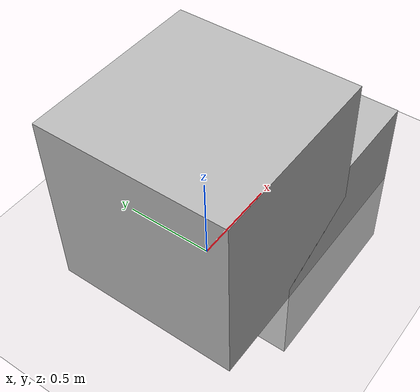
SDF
<?xml version="1.0"?>
<sdf version="1.4">
  <world name="default">

    <!-- Ground Plane -->
    <include>
      <uri>model://ground_plane</uri>
    </include>

    <include>
      <uri>model://sun</uri>
    </include>

    <model name="uwb_anchor0">
      <pose>0 0 0.5 0 0 0</pose>
      <link name="link">
        <collision name="collision">
          <geometry>
            <box>
              <size>1 1 1</size>
            </box>
          </geometry>
        </collision>

        <visual name="visual">
          <geometry>
            <box>
              <size>1 1 1</size>
            </box>
          </geometry>
        </visual>
      </link>

 <plugin name='libgtec_uwb_plugin' filename='libgtec_uwb_plugin.so'>
          <update_rate>25</update_rate>
          <nlosSoftWallWidth>0.25</nlosSoftWallWidth>
          <tag_z_offset>1.5</tag_z_offset>
          <tag_link>tag_0</tag_link>
          <anchor_prefix>uwb_anchor</anchor_prefix>
          <all_los>false</all_los>
          <tag_id>0</tag_id>
       </plugin>

    </model>
    <model name="uwb_anchor2">
      <pose>0.5 0 0 0 0 0</pose>
      <link name="link">
        <collision name="collision">
          <geometry>
            <box>
              <size>1 1 1</size>
            </box>
          </geometry>
        </collision>

        <visual name="visual">
          <geometry>
            <box>
              <size>1 1 1</size>
            </box>
          </geometry>
        </visual>
      </link>

       <plugin name='libgtec_uwb_plugin' filename='libgtec_uwb_plugin.so'>
          <update_rate>25</update_rate>
          <nlosSoftWallWidth>0.25</nlosSoftWallWidth>
          <tag_z_offset>1.5</tag_z_offset>
          <tag_link>tag_0</tag_link>
          <anchor_prefix>uwb_anchor</anchor_prefix>
          <all_los>false</all_los>
          <tag_id>0</tag_id>
       </plugin>
    </model>
        <model name="uwb_anchor3">
      <pose>0 0 0.5 0 0 0</pose>
      <link name="link">
        <collision name="collision">
          <geometry>
            <box>
              <size>1 1 1</size>
            </box>
          </geometry>
        </collision>

        <visual name="visual">
          <geometry>
            <box>
              <size>1 1 1</size>
            </box>
          </geometry>
        </visual>
      </link>

       <plugin name='libgtec_uwb_plugin' filename='libgtec_uwb_plugin.so'>
          <update_rate>25</update_rate>
          <nlosSoftWallWidth>0.25</nlosSoftWallWidth>
          <tag_z_offset>1.5</tag_z_offset>
          <tag_link>tag_0</tag_link>
          <anchor_prefix>uwb_anchor</anchor_prefix>
          <all_los>false</all_los>

       </plugin>
    </model>
    <model name="tag">
      <pose>0.5 0 0 0 0 0</pose>
      <link name="tag_0">
        <collision name="collision">
          <geometry>
            <box>
              <size>1 1 1</size>
            </box>
          </geometry>
        </collision>

        <visual name="visual">
          <geometry>
            <box>
              <size>1 1 1</size>
            </box>
          </geometry>
        </visual>
      </link>

      <plugin name='random' filename='libRandomVelocityPlugin.so'>
          <link>tag_0</link>
          <initial_velocity>0 0.5 0</initial_velocity>
          <velocity_factor>0.5</velocity_factor>
          <update_period>10</update_period>
          <min_z>0</min_z>
          <max_z>0</max_z>

       </plugin>
       <plugin name='libgtec_uwb_plugin' filename='libgtec_uwb_plugin.so'>
          <update_rate>25</update_rate>
          <nlosSoftWallWidth>0.25</nlosSoftWallWidth>
          <tag_z_offset>1.5</tag_z_offset>
          <tag_link>tag_0</tag_link>
          <all_los>false</all_los>
          <tag_id>0</tag_id>
       </plugin>
    </model>
  </world>
</sdf>
